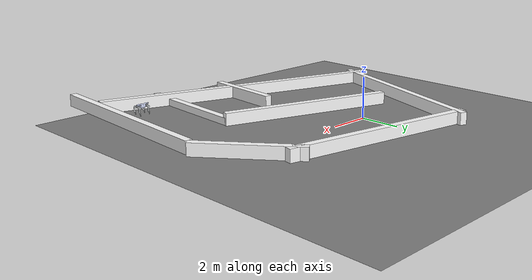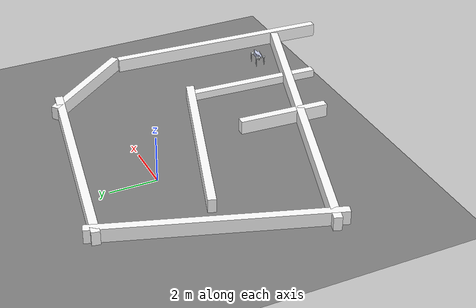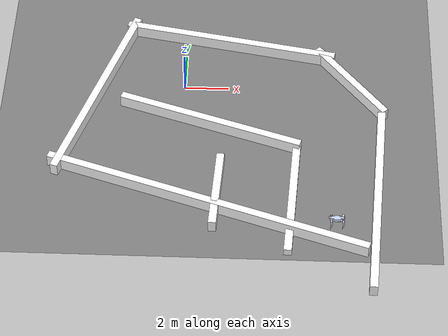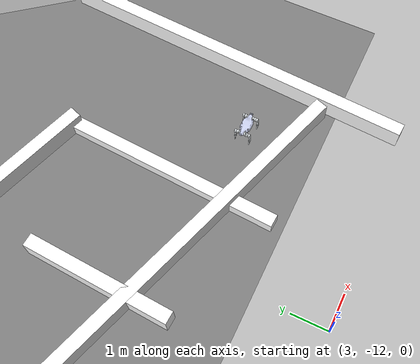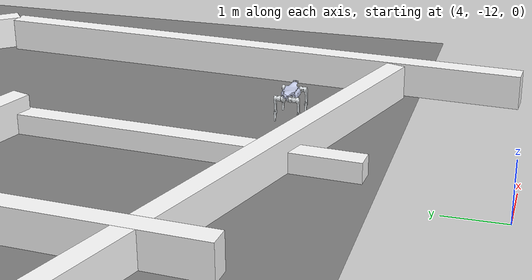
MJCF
<mujoco model="a2 scene_maze3">
  <include file="a2_maze3.xml"/>

  <statistic center="1.53 0 0.1" extent="10"/>

  <visual>
    <headlight diffuse="0.6 0.6 0.6" ambient="0.3 0.3 0.3" specular="0 0 0"/>
    <rgba haze="0.15 0.25 0.35 1"/>
    <global azimuth="-130" elevation="-20"/>
  </visual>

  <asset>
    <texture type="skybox" builtin="gradient" rgb1="0.3 0.5 0.7" rgb2="0 0 0" width="512" height="3072"/>
    <texture type="2d" name="groundplane" builtin="checker" mark="edge" rgb1="0.2 0.3 0.4" rgb2="0.1 0.2 0.3" markrgb="0.8 0.8 0.8" width="300" height="300"/>
    <material name="groundplane" texture="groundplane" texuniform="true" texrepeat="5 5" reflectance="0.2"/>
  </asset>

  <worldbody>
    <light pos="1.53 0 10" dir="0 0 -1" directional="true"/>
    <body name="floor" pos="1.53473 0 0" quat="1 -2.73691e-48 0 0">
      <geom name="floor_geom" type="plane" size="10 10 0.0005" rgba="0.498039 0.498039 0.498039 1" mass="0.2"/>
      <body name="box_0002" pos="0.494296 2.69243 0.3" quat="0.995882 -2.23489e-33 -2.03449e-34 -0.090658">
        <geom name="box_0002_geom" type="box" size="5 0.175 0.3" rgba="1 1 1 1" mass="0.2"/>
        <body name="box_0003" pos="6 -1.36779 0" quat="0.935523 -3.76307e-33 -5.02354e-33 -0.353266">
          <geom name="box_0003_geom" type="box" size="2.5 0.175 0.3" rgba="1 1 1 1" mass="0.2"/>
          <body name="box_0005" pos="6.2 -3.4915 0" quat="0.934956 0 0 -0.354763">
            <geom name="box_0005_geom" type="box" size="5 0.175 0.3" rgba="1 1 1 1" mass="0.2"/>
            <body name="box_0009" pos="0.2 -3.73091 -0.125" quat="1 -4.61534e-34 0 0">
              <geom name="box_0009_geom" type="box" size="3 0.175 0.175" rgba="1 1 1 1" mass="0.2"/>
              <body name="box_0010" pos="8.88178e-16 -3.35035 0.125" quat="1 -4.61534e-34 5.86672e-33 0">
                <geom name="box_0010_geom" type="box" size="2 0.175 0.3" rgba="1 1 1 1" mass="0.2"/>
              </body>
            </body>
          </body>
        </body>
      </body>
      <body name="box_0006" pos="-0.282596 -2.441717 0.3" quat="0.98736 2.33471e-33 -6.27186e-34 -0.158493">
        <geom name="box_0006_geom" type="box" size="4.33556 0.175 0.3" rgba="1 1 1 1" mass="0.2"/>
      </body>
      <body name="box_0007" pos="-5.54366 -0.8 0.3" quat="0.987265 0 0 -0.159082">
        <geom name="box_0007_geom" type="box" size="0.175 5 0.3" rgba="1 1 1 1" mass="0.2"/>
        <body name="box_0008" pos="7 -4.43652 0" quat="1 0 0 0">
          <geom name="box_0008_geom" type="box" size="7.5 0.175 0.3" rgba="1 1 1 1" mass="0.2"/>
        </body>
      </body>
    </body>
    <camera name="camera" pos="1 -9.86076e-32 -2.81717" quat="3.26795e-07 6.16298e-33 1 6.32592e-34" fovy="45"/>
  </worldbody>
</mujoco>

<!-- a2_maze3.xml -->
<mujoco model="a2">
  <compiler angle="radian" meshdir="meshes/"/>
  <option gravity="0 0 -9.81" integrator="implicitfast"/>

  <visual>
    <map znear="0.002"/>
  </visual>

  <default>
      <default class="hip_joint">
        <joint damping="0.2" armature="0.03" frictionloss="1.0" />
      </default>
      <default class="thigh_joint">
        <joint damping="0.2" armature="0.03" frictionloss="1.0" />
      </default>
      <default class="calf_joint">
        <joint damping="1.0" armature="0.03" frictionloss="3.0" />
      </default>
      <default class="collision">
        <geom group="3" priority="1" condim="3"/>
      </default>
      <default class="foot">
          <geom group="3" priority="1" condim="6" friction="0.6 0.01 0.01"/>
      </default>
  </default>

  <asset>
    <mesh name="base_link" file="../meshes/base_link.stl"/>
    <mesh name="left_front_Link1" file="../meshes/left_front_Link1.stl"/>
    <mesh name="left_front_Link2" file="../meshes/left_front_Link2.stl"/>
    <mesh name="left_front_Link3" file="../meshes/left_front_Link3.stl"/>
    <mesh name="left_front_Link4" file="../meshes/left_front_Link4.stl"/>
    <mesh name="left_hind_Link1" file="../meshes/left_hind_Link1.stl"/>
    <mesh name="left_hind_Link2" file="../meshes/left_hind_Link2.stl"/>
    <mesh name="left_hind_Link3" file="../meshes/left_hind_Link3.stl"/>
    <mesh name="left_hind_Link4" file="../meshes/left_hind_Link4.stl"/>
    <mesh name="right_front_Link1" file="../meshes/right_front_Link1.stl"/>
    <mesh name="right_front_Link2" file="../meshes/right_front_Link2.stl"/>
    <mesh name="right_front_Link3" file="../meshes/right_front_Link3.stl"/>
    <mesh name="right_front_Link4" file="../meshes/right_front_Link4.stl"/>
    <mesh name="right_hind_Link1" file="../meshes/right_hind_Link1.stl"/>
    <mesh name="right_hind_Link2" file="../meshes/right_hind_Link2.stl"/>
    <mesh name="right_hind_Link3" file="../meshes/right_hind_Link3.stl"/>
    <mesh name="right_hind_Link4" file="../meshes/right_hind_Link4.stl"/>
  </asset>

  <worldbody>
    <body name="base_link" pos="7.0 -8.0 0.4" quat="0 0 0 1">
      <inertial pos="0.00698259 -0.000712858 0.0128895" quat="-0.00152907 0.699583 -0.00252986 0.714546" mass="19.651" diaginertia="0.472398 0.407723 0.141627"/>
      <joint name="floating_base_joint" type="free" limited="false" actuatorfrclimited="false"/>
      <site name="imu" pos="-0.0 0 0.0" />
      <site name="front_lidar_site" pos="0.33767 0.0 0.08134" quat="0.5 0.5 0.5 0.5"/>
      <site name="rear_lidar_site" pos="-0.27997 0.0 0.087337" quat="0.5 0.5 -0.5 -0.5"/>
      <camera name="front_camera" pos="0.3421785 0.0336742 0.0513862" xyaxes="0 -1 0 0 0 1" fovy="77" />
      <geom type="mesh" contype="0" conaffinity="0" group="1" density="0" rgba="0.792157 0.819608 0.933333 1" mesh="base_link"/>
      <geom class="collision" size="0.12 0.14 0.085" pos="0 0 0.007" type="box" rgba="0.792157 0.819608 0.933333 1"/>
      <geom class="collision" size="0.04 0.025 0.01" pos="0.25 0 0.119" type="box" rgba="0.792157 0.819608 0.933333 1"/>
      <geom class="collision" size="0.025 0.015 0.008" pos="-0.22 0 0.119" quat="0.999888 0 -0.0149994 0" type="box" rgba="0.792157 0.819608 0.933333 1"/>
      <geom class="collision" size="0.03 0.05 0.005" pos="0.365 0 0.1" quat="0.939373 0 -0.342898 0" type="box" rgba="0.792157 0.819608 0.933333 1"/>
      <geom class="collision" size="0.0225 0.05 0.005" pos="-0.31 0 0.112" quat="0.939373 0 0.342898 0" type="box" rgba="0.792157 0.819608 0.933333 1"/>
      <body name="FL_hip" pos="0.25944 0.075113 0">
        <inertial pos="-0.002408 -0.01622 0.000239" quat="0.66751 0.421649 0.565191 0.239168" mass="1.62" diaginertia="0.0016644 0.00161602 0.00145995"/>
        <joint name="FL_hip_joint" pos="0 0 0" axis="1 0 0" range="-1.01 1.01" actuatorfrcrange="-120 120" class="hip_joint"/>
        <geom type="mesh" contype="0" conaffinity="0" group="1" density="0" rgba="0.898039 0.917647 0.929412 1" mesh="left_front_Link1"/>
        <body name="FL_thigh" pos="0 0.12779 0">
          <inertial pos="-0.003268 -0.03111 -0.053896" quat="0.993045 0.11348 0.0231928 0.0211279" mass="3.079" diaginertia="0.0293395 0.0280448 0.00383794"/>
          <joint name="FL_thigh_joint" pos="0 0 0" axis="0 1 0" range="-2.34 3.15" actuatorfrcrange="-120 120" class="thigh_joint"/>
          <geom type="mesh" contype="0" conaffinity="0" group="1" density="0" rgba="0.898039 0.917647 0.929412 1" mesh="left_front_Link2"/>
          <geom class="collision" size="0.048 0.06" pos="0 -0.04 0" quat="0.707035 0.707179 0 0" type="cylinder" rgba="0.898039 0.917647 0.929412 1"/>
          <geom class="collision" size="0.0275 0.018 0.085" pos="-0.025 0 -0.09" quat="0.999988 0 0.00499998 0" type="box" rgba="0.898039 0.917647 0.929412 1"/>
          <geom class="collision" size="0.0085 0.025 0.025" pos="-0.022 0 -0.27" quat="0.930508 0 -0.366273 0" type="box" rgba="0.898039 0.917647 0.929412 1"/>
          <body name="FL_calf" pos="0 0 -0.275">
            <inertial pos="0.0102138 -1.99312e-05 -0.136496" quat="0.706884 -0.0119077 -0.0120568 0.707127" mass="0.407" diaginertia="0.00511119 0.00502314 0.000177746"/>
            <joint name="FL_calf_joint" pos="0 0 0" axis="0 1 0" range="-2.77 -0.54" actuatorfrcrange="-180 180" class="calf_joint"/>
            <geom type="mesh" contype="0" conaffinity="0" group="1" density="0" rgba="0.898039 0.917647 0.929412 1" mesh="left_front_Link3"/>
            <geom class="collision" size="0.012 0.015 0.05" pos="0.018 0 -0.08" quat="0.992809 0 -0.119712 0" type="box" rgba="0.898039 0.917647 0.929412 1"/>
            <geom class="collision" size="0.011 0.015 0.04" pos="0.033 0 -0.17" quat="0.999888 0 -0.0149994 0" type="box" rgba="0.898039 0.917647 0.929412 1"/>
            <geom class="collision" size="0.01 0.018 0.03" pos="0.029 0 -0.236" quat="0.995004 0 0.0998334 0" type="box" rgba="0.898039 0.917647 0.929412 1"/>
            <geom class="collision" size="0.005 0.018 0.03" pos="0.008 0 -0.23" quat="0.942755 0 0.333487 0" type="box" rgba="0.898039 0.917647 0.929412 1"/>
            <geom pos="0 0 -0.275" quat="1 0 0 0" type="mesh" contype="0" conaffinity="0" group="1" density="0" rgba="0.698039 0.698039 0.698039 1" mesh="left_front_Link4"/>
            <geom size="0.032" pos="0 0 -0.275" rgba="0.698039 0.698039 0.698039 1" class="foot"/>
          </body>
        </body>
      </body>
      <body name="RL_hip" pos="-0.25944 0.075113 0">
        <inertial pos="0.00327 -0.01622 -9.7e-05" quat="0.358494 0.383537 0.580824 0.622113" mass="1.62" diaginertia="0.00167848 0.00163116 0.00141504"/>
        <joint name="RL_hip_joint" pos="0 0 0" axis="1 0 0" range="-1.01 1.01" actuatorfrcrange="-120 120" class="hip_joint"/>
        <geom type="mesh" contype="0" conaffinity="0" group="1" density="0" rgba="0.898039 0.917647 0.929412 1" mesh="left_hind_Link1"/>
        <body name="RL_thigh" pos="0 0.12779 0">
          <inertial pos="-0.003268 -0.03111 -0.053896" quat="0.993045 0.11348 0.0231928 0.0211279" mass="3.079" diaginertia="0.0293395 0.0280448 0.00383794"/>
          <joint name="RL_thigh_joint" pos="0 0 0" axis="0 1 0" range="-1.56 3.94" actuatorfrcrange="-120 120" class="thigh_joint"/>
          <geom type="mesh" contype="0" conaffinity="0" group="1" density="0" rgba="0.898039 0.917647 0.929412 1" mesh="left_hind_Link2"/>
          <geom class="collision" size="0.048 0.06" pos="0 -0.04 0" quat="0.707035 0.707179 0 0" type="cylinder" rgba="0.898039 0.917647 0.929412 1"/>
          <geom class="collision" size="0.0275 0.018 0.085" pos="-0.025 0 -0.09" quat="0.999988 0 0.00499998 0" type="box" rgba="0.898039 0.917647 0.929412 1"/>
          <geom class="collision" size="0.0085 0.025 0.025" pos="-0.022 0 -0.27" quat="0.930508 0 -0.366273 0" type="box" rgba="0.898039 0.917647 0.929412 1"/>
          <body name="RL_calf" pos="0 0 -0.275">
            <inertial pos="0.0102138 -1.99312e-05 -0.136496" quat="0.706884 -0.0119077 -0.0120568 0.707127" mass="0.407" diaginertia="0.00511119 0.00502314 0.000177746"/>
            <joint name="RL_calf_joint" pos="0 0 0" axis="0 1 0" range="-2.77 -0.54" actuatorfrcrange="-180 180" class="calf_joint"/>
            <geom type="mesh" contype="0" conaffinity="0" group="1" density="0" rgba="0.898039 0.917647 0.929412 1" mesh="left_hind_Link3"/>
            <geom class="collision" size="0.012 0.015 0.05" pos="0.018 0 -0.08" quat="0.992809 0 -0.119712 0" type="box" rgba="0.898039 0.917647 0.929412 1"/>
            <geom class="collision" size="0.011 0.015 0.04" pos="0.033 0 -0.17" quat="0.999888 0 -0.0149994 0" type="box" rgba="0.898039 0.917647 0.929412 1"/>
            <geom class="collision" size="0.01 0.018 0.03" pos="0.029 0 -0.236" quat="0.995004 0 0.0998334 0" type="box" rgba="0.898039 0.917647 0.929412 1"/>
            <geom class="collision" size="0.005 0.018 0.03" pos="0.008 0 -0.23" quat="0.942755 0 0.333487 0" type="box" rgba="0.898039 0.917647 0.929412 1"/>
            <geom pos="0 0 -0.275" quat="1 0 0 0" type="mesh" contype="0" conaffinity="0" group="1" density="0" rgba="0.698039 0.698039 0.698039 1" mesh="left_hind_Link4"/>
            <geom size="0.032" pos="0 0 -0.275" rgba="0.698039 0.698039 0.698039 1" class="foot"/>
          </body>
        </body>
      </body>
      <body name="FR_hip" pos="0.25944 -0.075113 0">
        <inertial pos="-0.002465 0.01622 0.000318" quat="0.244263 0.553086 0.449878 0.657299" mass="1.62" diaginertia="0.0016672 0.00160755 0.00146457"/>
        <joint name="FR_hip_joint" pos="0 0 0" axis="1 0 0" range="-1.01 1.01" actuatorfrcrange="-120 120" class="hip_joint"/>
        <geom type="mesh" contype="0" conaffinity="0" group="1" density="0" rgba="0.898039 0.917647 0.929412 1" mesh="right_front_Link1"/>
        <body name="FR_thigh" pos="0 -0.12779 0">
          <inertial pos="-0.003256 0.031125 -0.053921" quat="0.993054 -0.113587 0.0234158 -0.0198545" mass="3.077" diaginertia="0.029323 0.028038 0.00383842"/>
          <joint name="FR_thigh_joint" pos="0 0 0" axis="0 1 0" range="-2.34 3.15" actuatorfrcrange="-120 120" class="thigh_joint"/>
          <geom type="mesh" contype="0" conaffinity="0" group="1" density="0" rgba="0.898039 0.917647 0.929412 1" mesh="right_front_Link2"/>
          <geom class="collision" size="0.048 0.06" pos="0 0.04 0" quat="0.707035 0.707179 0 0" type="cylinder" rgba="0.898039 0.917647 0.929412 1"/>
          <geom class="collision" size="0.0275 0.018 0.085" pos="-0.025 0 -0.09" quat="0.999988 0 0.00499998 0" type="box" rgba="0.898039 0.917647 0.929412 1"/>
          <geom class="collision" size="0.0085 0.025 0.025" pos="-0.022 0 -0.27" quat="0.930508 0 -0.366273 0" type="box" rgba="0.898039 0.917647 0.929412 1"/>
          <body name="FR_calf" pos="0 0 -0.275">
            <inertial pos="0.0102138 1.55479e-05 -0.136496" quat="0.707151 -0.0120743 -0.0118903 0.706859" mass="0.407" diaginertia="0.00511119 0.00502314 0.000177746"/>
            <joint name="FR_calf_joint" pos="0 0 0" axis="0 1 0" range="-2.77 -0.54" actuatorfrcrange="-180 180" class="calf_joint"/>
            <geom type="mesh" contype="0" conaffinity="0" group="1" density="0" rgba="0.898039 0.917647 0.929412 1" mesh="right_front_Link3"/>
            <geom class="collision" size="0.012 0.015 0.05" pos="0.018 0 -0.08" quat="0.992809 0 -0.119712 0" type="box" rgba="0.898039 0.917647 0.929412 1"/>
            <geom class="collision" size="0.011 0.015 0.04" pos="0.033 0 -0.17" quat="0.999888 0 -0.0149994 0" type="box" rgba="0.898039 0.917647 0.929412 1"/>
            <geom class="collision" size="0.01 0.018 0.03" pos="0.029 0 -0.236" quat="0.995004 0 0.0998334 0" type="box" rgba="0.898039 0.917647 0.929412 1"/>
            <geom class="collision" size="0.005 0.018 0.03" pos="0.008 0 -0.23" quat="0.942755 0 0.333487 0" type="box" rgba="0.898039 0.917647 0.929412 1"/>
            <geom pos="0 0 -0.275" quat="1 0 0 0" type="mesh" contype="0" conaffinity="0" group="1" density="0" rgba="0.698039 0.698039 0.698039 1" mesh="right_front_Link4"/>
            <geom size="0.032" pos="0 0 -0.275" rgba="0.698039 0.698039 0.698039 1" class="foot"/>
          </body>
        </body>
      </body>
      <body name="RR_hip" pos="-0.25944 -0.075113 0">
        <inertial pos="0.00327 0.01622 -3.7e-05" quat="0.616206 0.585144 0.36648 0.378931" mass="1.62" diaginertia="0.00167769 0.00163476 0.00141225"/>
        <joint name="RR_hip_joint" pos="0 0 0" axis="1 0 0" range="-1.01 1.01" actuatorfrcrange="-120 120" class="hip_joint"/>
        <geom type="mesh" contype="0" conaffinity="0" group="1" density="0" rgba="0.898039 0.917647 0.929412 1" mesh="right_hind_Link1"/>
        <body name="RR_thigh" pos="0 -0.12779 0">
          <inertial pos="-0.003256 0.031125 -0.053921" quat="0.993054 -0.113587 0.0234158 -0.0198545" mass="3.077" diaginertia="0.029323 0.028038 0.00383842"/>
          <joint name="RR_thigh_joint" pos="0 0 0" axis="0 1 0" range="-1.56 3.94" actuatorfrcrange="-120 120" class="thigh_joint"/>
          <geom type="mesh" contype="0" conaffinity="0" group="1" density="0" rgba="0.898039 0.917647 0.929412 1" mesh="right_hind_Link2"/>
          <geom class="collision" size="0.048 0.06" pos="0 0.04 0" quat="0.707035 0.707179 0 0" type="cylinder" rgba="0.898039 0.917647 0.929412 1"/>
          <geom class="collision" size="0.0275 0.018 0.085" pos="-0.025 0 -0.09" quat="0.999988 0 0.00499998 0" type="box" rgba="0.898039 0.917647 0.929412 1"/>
          <geom class="collision" size="0.0085 0.025 0.025" pos="-0.022 0 -0.27" quat="0.930508 0 -0.366273 0" type="box" rgba="0.898039 0.917647 0.929412 1"/>
          <body name="RR_calf" pos="0 0 -0.275">
            <inertial pos="0.0102138 1.55479e-05 -0.136496" quat="0.707151 -0.0120743 -0.0118903 0.706859" mass="0.407" diaginertia="0.00511119 0.00502314 0.000177746"/>
            <joint name="RR_calf_joint" pos="0 0 0" axis="0 1 0" range="-2.77 -0.54" actuatorfrcrange="-180 180" class="calf_joint"/>
            <geom type="mesh" contype="0" conaffinity="0" group="1" density="0" rgba="0.898039 0.917647 0.929412 1" mesh="right_hind_Link3"/>
            <geom class="collision" size="0.012 0.015 0.05" pos="0.018 0 -0.08" quat="0.992809 0 -0.119712 0" type="box" rgba="0.898039 0.917647 0.929412 1"/>
            <geom class="collision" size="0.011 0.015 0.04" pos="0.033 0 -0.17" quat="0.999888 0 -0.0149994 0" type="box" rgba="0.898039 0.917647 0.929412 1"/>
            <geom class="collision" size="0.01 0.018 0.03" pos="0.029 0 -0.236" quat="0.995004 0 0.0998334 0" type="box" rgba="0.898039 0.917647 0.929412 1"/>
            <geom class="collision" size="0.005 0.018 0.03" pos="0.008 0 -0.23" quat="0.942755 0 0.333487 0" type="box" rgba="0.898039 0.917647 0.929412 1"/>
            <geom pos="0 0 -0.275" quat="1 0 0 0" type="mesh" contype="0" conaffinity="0" group="1" density="0" rgba="0.698039 0.698039 0.698039 1" mesh="right_hind_Link4"/>
            <geom size="0.032" pos="0 0 -0.275" rgba="0.698039 0.698039 0.698039 1" class="foot"/>
          </body>
        </body>
      </body>
    </body>
  </worldbody>

  <actuator>
    <motor ctrlrange="-120 120"  name="FR_hip" joint="FR_hip_joint"/>
    <motor ctrlrange="-120 120"  name="FR_thigh" joint="FR_thigh_joint"/>
    <motor ctrlrange="-180 180"  name="FR_calf" joint="FR_calf_joint"/>
    <motor ctrlrange="-120 120"  name="FL_hip" joint="FL_hip_joint"/>
    <motor ctrlrange="-120 120"  name="FL_thigh" joint="FL_thigh_joint"/>
    <motor ctrlrange="-180 180" name="FL_calf" joint="FL_calf_joint"/>
    <motor ctrlrange="-120 120"  name="RR_hip" joint="RR_hip_joint"/>
    <motor ctrlrange="-120 120"  name="RR_thigh" joint="RR_thigh_joint"/>
    <motor ctrlrange="-180 180" name="RR_calf" joint="RR_calf_joint"/>
    <motor ctrlrange="-120 120"  name="RL_hip" joint="RL_hip_joint"/>
    <motor ctrlrange="-120 120"  name="RL_thigh" joint="RL_thigh_joint"/>
    <motor ctrlrange="-180 180" name="RL_calf" joint="RL_calf_joint"/>
  </actuator>

  <sensor>
    <jointpos name="FR_hip_pos" joint="FR_hip_joint" />
    <jointpos name="FR_thigh_pos" joint="FR_thigh_joint" />
    <jointpos name="FR_calf_pos" joint="FR_calf_joint" />
    <jointpos name="FL_hip_pos" joint="FL_hip_joint" />
    <jointpos name="FL_thigh_pos" joint="FL_thigh_joint" />
    <jointpos name="FL_calf_pos" joint="FL_calf_joint" />
    <jointpos name="RR_hip_pos" joint="RR_hip_joint" />
    <jointpos name="RR_thigh_pos" joint="RR_thigh_joint" />
    <jointpos name="RR_calf_pos" joint="RR_calf_joint" />
    <jointpos name="RL_hip_pos" joint="RL_hip_joint" />
    <jointpos name="RL_thigh_pos" joint="RL_thigh_joint" />
    <jointpos name="RL_calf_pos" joint="RL_calf_joint" />

    <jointvel name="FR_hip_vel" joint="FR_hip_joint" />
    <jointvel name="FR_thigh_vel" joint="FR_thigh_joint" />
    <jointvel name="FR_calf_vel" joint="FR_calf_joint" />
    <jointvel name="FL_hip_vel" joint="FL_hip_joint" />
    <jointvel name="FL_thigh_vel" joint="FL_thigh_joint" />
    <jointvel name="FL_calf_vel" joint="FL_calf_joint" />
    <jointvel name="RR_hip_vel" joint="RR_hip_joint" />
    <jointvel name="RR_thigh_vel" joint="RR_thigh_joint" />
    <jointvel name="RR_calf_vel" joint="RR_calf_joint" />
    <jointvel name="RL_hip_vel" joint="RL_hip_joint" />
    <jointvel name="RL_thigh_vel" joint="RL_thigh_joint" />
    <jointvel name="RL_calf_vel" joint="RL_calf_joint" />

    <jointactuatorfrc name="FR_hip_torque" joint="FR_hip_joint" noise="0.01" />
    <jointactuatorfrc name="FR_thigh_torque" joint="FR_thigh_joint" noise="0.01" />
    <jointactuatorfrc name="FR_calf_torque" joint="FR_calf_joint" noise="0.01" />
    <jointactuatorfrc name="FL_hip_torque" joint="FL_hip_joint" noise="0.01" />
    <jointactuatorfrc name="FL_thigh_torque" joint="FL_thigh_joint" noise="0.01" />
    <jointactuatorfrc name="FL_calf_torque" joint="FL_calf_joint" noise="0.01" />
    <jointactuatorfrc name="RR_hip_torque" joint="RR_hip_joint" noise="0.01" />
    <jointactuatorfrc name="RR_thigh_torque" joint="RR_thigh_joint" noise="0.01" />
    <jointactuatorfrc name="RR_calf_torque" joint="RR_calf_joint" noise="0.01" />
    <jointactuatorfrc name="RL_hip_torque" joint="RL_hip_joint" noise="0.01" />
    <jointactuatorfrc name="RL_thigh_torque" joint="RL_thigh_joint" noise="0.01" />
    <jointactuatorfrc name="RL_calf_torque" joint="RL_calf_joint" noise="0.01" />

    <framequat name="imu_quat" objtype="site" objname="imu" noise="0.01" />
    <gyro name="imu_gyro" site="imu" noise="0.01" />
    <accelerometer name="imu_acc" site="imu" noise="0.01" />

    <framepos name="frame_pos" objtype="site" objname="imu" />
    <framelinvel name="frame_vel" objtype="site" objname="imu" />
  </sensor>

</mujoco>
